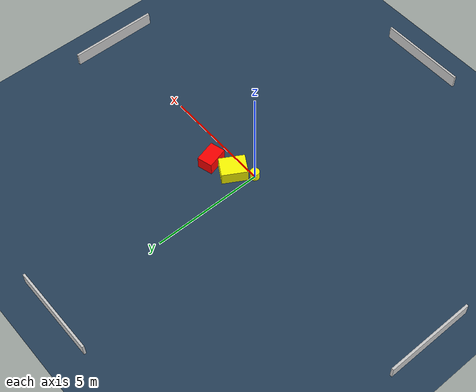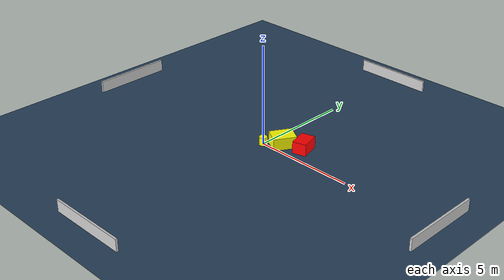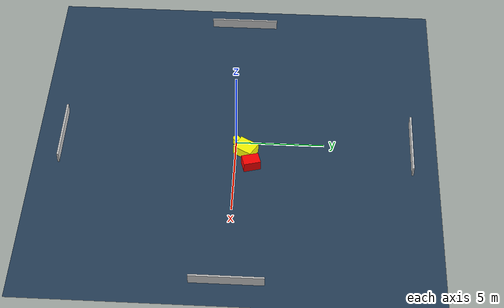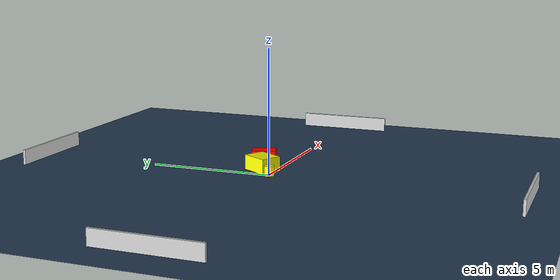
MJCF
<?xml version="1.0" ?>
<mujoco model="generated_environment">
  <option timestep="0.01" integrator="RK4" cone="elliptic"/>
  <default>
    <geom density="1"/>
  </default>
  <asset>
    <texture builtin="gradient" height="3072" name="skybox" rgb1="0.3 0.5 0.7" rgb2="0 0 0" type="skybox" width="512"/>
    <texture builtin="checker" height="300" name="groundplane" rgb1="0.2 0.3 0.4" rgb2="0.1 0.2 0.3" type="2d" width="300"/>
    <material name="groundplane" reflectance="0.2" texrepeat="5 5" texture="groundplane"/>
  </asset>
  <worldbody>
    <light dir="0 0 -1" directional="true" pos="0 0 1.5"/>
    <geom condim="3" friction="0.5 0.005 0.001" material="groundplane" name="floor" pos="0 0 0" size="0 0 0.05" type="plane"/>
    <body name="walls">
      <geom name="wall_1" condim="4" pos="-10.0 0.0 0.3" rgba="0.800000011920929 0.800000011920929 0.800000011920929 1.0" size="0.05 2.0 0.3" type="box"/>
      <geom name="wall_2" condim="4" pos="10.0 0.0 0.3" rgba="0.800000011920929 0.800000011920929 0.800000011920929 1.0" size="0.05 2.0 0.3" type="box"/>
      <geom name="wall_3" condim="4" pos="0.0 -10.0 0.3" rgba="0.800000011920929 0.800000011920929 0.800000011920929 1.0" size="2.0 0.05 0.3" type="box"/>
      <geom name="wall_4" condim="4" pos="0.0 10.0 0.3" rgba="0.800000011920929 0.800000011920929 0.800000011920929 1.0" size="2.0 0.05 0.3" type="box"/>
    </body>
    <body name="robot">
      <joint name="joint_x" type="slide" pos="0 0 0" axis="1 0 0"/>
      <joint name="joint_y" type="slide" pos="0 0 0" axis="0 1 0"/>
      <geom name="robot" type="cylinder" pos="0.0 0.0 0.2" size="0.2 0.2 0.0" mass="5.0" friction="1.0 0.005 0.0001" condim="4" rgba="1.0 1.0 0.0 1.0"/>
    </body>
    <body name="obstacle_1_movable">
      <geom name="obstacle_1_movable" condim="4" pos="0.7281512783859929 0.5673829282731466 0.3" euler="0 0 149.73826603755384" friction="0.0 0.005 0.001" rgba="1.0 1.0 0.0 1.0" size="0.44420521800152724 0.5696136944019787 0.3" type="box" mass="0.1"/>
      <joint type="free"/>
    </body>
    <body name="obstacle_2_static">
      <geom name="obstacle_2_static" condim="4" pos="1.7576454198890272 0.9099073753842603 0.3" euler="0 0 195.31387263321784" friction="0.0 0.005 0.001" rgba="1.0 0.0 0.0 1.0" size="0.34454962768551245 0.48337987837930896 0.3" type="box"/>
    </body>
  </worldbody>
  <actuator>
    <motor name="actuator_x" joint="joint_x" gear="1" ctrlrange="-1 1"/>
    <motor name="actuator_y" joint="joint_y" gear="1" ctrlrange="-1 1"/>
  </actuator>
</mujoco>
